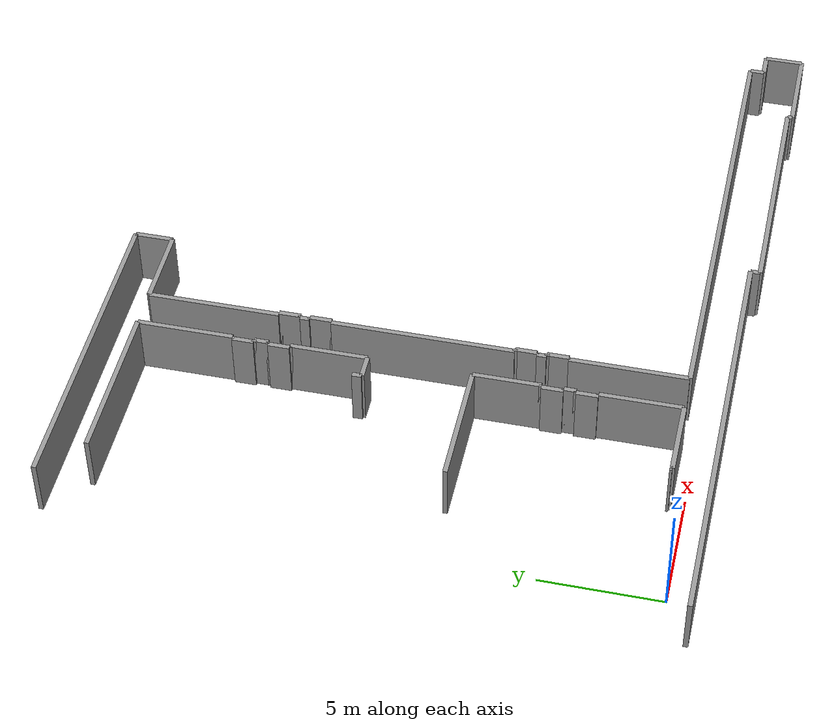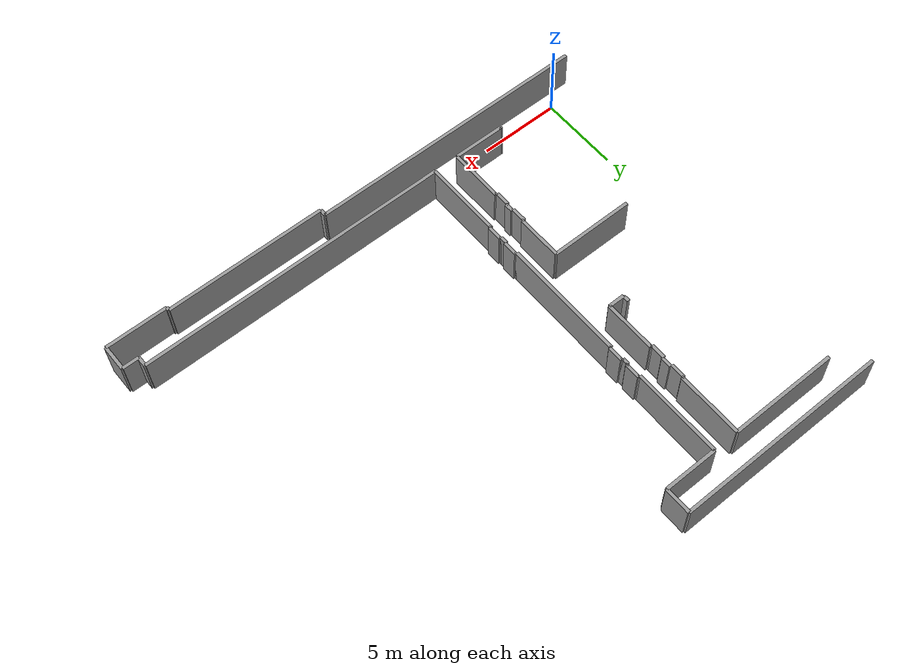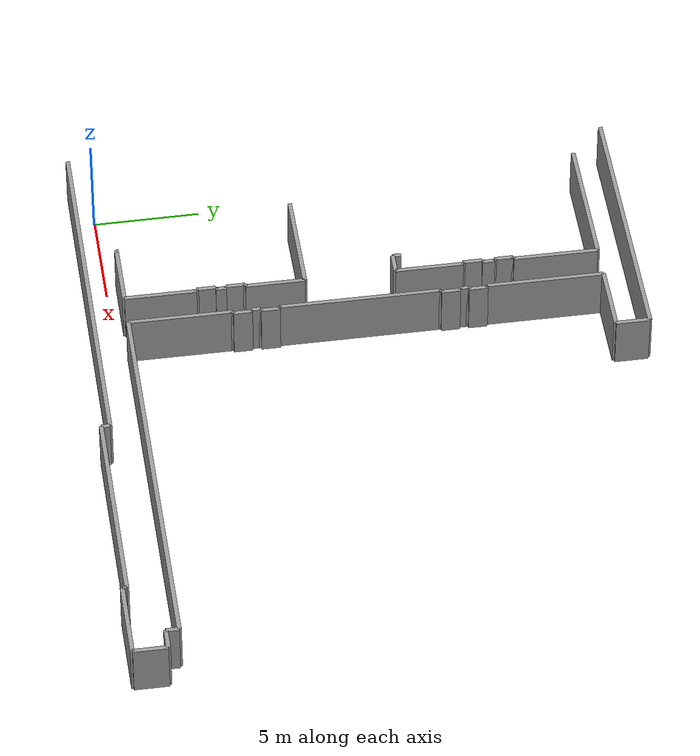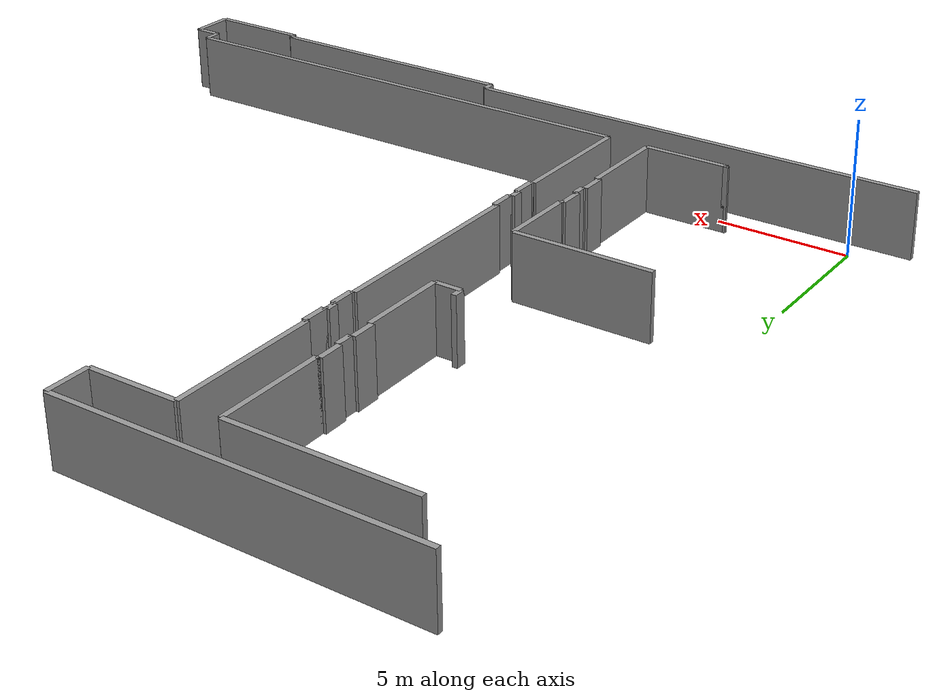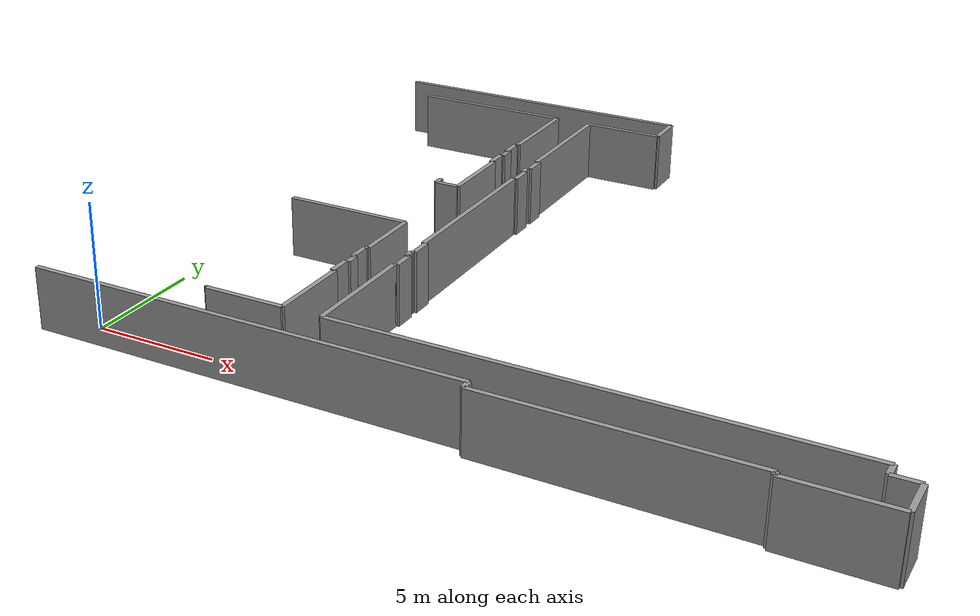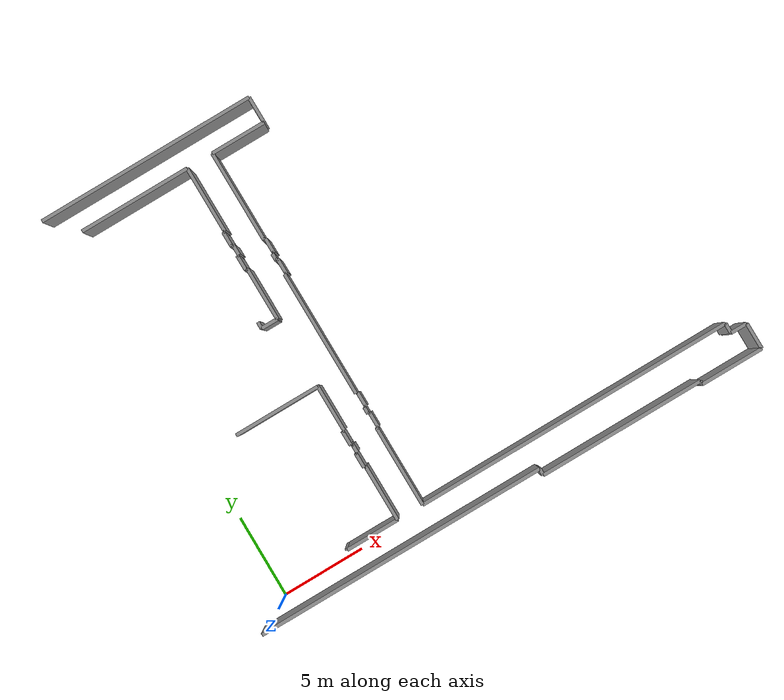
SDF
<sdf version="1.4">
 <model name="Levine">
  <link name="Floor_0">
   <collision name="Floor_0_Collision">
    <geometry><box><size>40 30 0.1</size></box></geometry>
    <pose>0 0 0.05 0 -0 0</pose>
   </collision>
   <velocity_decay><linear>0</linear><angular>0</angular></velocity_decay>
   <pose>15 10 1.7 0 -0 0</pose>
  </link>
  <link name="Wall_17">
   <collision name="Wall_17_Collision">
    <geometry><box><size>13.2 0.2 2.5</size></box></geometry>
    <pose>0 0 1.25 0 0 0</pose>
   </collision>
   <visual name="Wall_17_Visual">
    <pose>0 0 1.25 0 0 0</pose>
    <geometry><box><size>13.2 0.2 2.5</size></box></geometry>
    <material>
     <script><uri>file://media/materials/scripts/gazebo.material</uri><name>Gazebo/Grey</name></script>
    </material>
   </visual>
   <velocity_decay><linear>0</linear><angular>0</angular></velocity_decay>
   <pose>6.0 24.6 0 0 0 0.0</pose>
  </link>
  <link name="Wall_18">
   <collision name="Wall_18_Collision">
    <geometry><box><size>1.6 0.2 2.5</size></box></geometry>
    <pose>0 0 1.25 0 0 0</pose>
   </collision>
   <visual name="Wall_18_Visual">
    <pose>0 0 1.25 0 0 0</pose>
    <geometry><box><size>1.6 0.2 2.5</size></box></geometry>
    <material>
     <script><uri>file://media/materials/scripts/gazebo.material</uri><name>Gazebo/Grey</name></script>
    </material>
   </visual>
   <velocity_decay><linear>0</linear><angular>0</angular></velocity_decay>
   <pose>12.6 23.8 0 0 0 -1.57079632679</pose>
  </link>
  <link name="Wall_19">
   <collision name="Wall_19_Collision">
    <geometry><box><size>3.3 0.2 2.5</size></box></geometry>
    <pose>0 0 1.25 0 0 0</pose>
   </collision>
   <visual name="Wall_19_Visual">
    <pose>0 0 1.25 0 0 0</pose>
    <geometry><box><size>3.3 0.2 2.5</size></box></geometry>
    <material>
     <script><uri>file://media/materials/scripts/gazebo.material</uri><name>Gazebo/Grey</name></script>
    </material>
   </visual>
   <velocity_decay><linear>0</linear><angular>0</angular></velocity_decay>
   <pose>10.95 23.0 0 0 0 3.14159265359</pose>
  </link>
  <link name="Wall_20">
   <collision name="Wall_20_Collision">
    <geometry><box><size>4.9 0.2 2.5</size></box></geometry>
    <pose>0 0 1.25 0 0 0</pose>
   </collision>
   <visual name="Wall_20_Visual">
    <pose>0 0 1.25 0 0 0</pose>
    <geometry><box><size>4.9 0.2 2.5</size></box></geometry>
    <material>
     <script><uri>file://media/materials/scripts/gazebo.material</uri><name>Gazebo/Grey</name></script>
    </material>
   </visual>
   <velocity_decay><linear>0</linear><angular>0</angular></velocity_decay>
   <pose>9.3 3.05 0 0 0 1.57079632679</pose>
  </link>
  <link name="Wall_21">
   <collision name="Wall_21_Collision">
    <geometry><box><size>0.1 0.2 2.5</size></box></geometry>
    <pose>0 0 1.25 0 0 0</pose>
   </collision>
   <visual name="Wall_21_Visual">
    <pose>0 0 1.25 0 0 0</pose>
    <geometry><box><size>0.1 0.2 2.5</size></box></geometry>
    <material>
     <script><uri>file://media/materials/scripts/gazebo.material</uri><name>Gazebo/Grey</name></script>
    </material>
   </visual>
   <velocity_decay><linear>0</linear><angular>0</angular></velocity_decay>
   <pose>9.35 5.5 0 0 0 0.0</pose>
  </link>
  <link name="Wall_22">
   <collision name="Wall_22_Collision">
    <geometry><box><size>0.9 0.2 2.5</size></box></geometry>
    <pose>0 0 1.25 0 0 0</pose>
   </collision>
   <visual name="Wall_22_Visual">
    <pose>0 0 1.25 0 0 0</pose>
    <geometry><box><size>0.9 0.2 2.5</size></box></geometry>
    <material>
     <script><uri>file://media/materials/scripts/gazebo.material</uri><name>Gazebo/Grey</name></script>
    </material>
   </visual>
   <velocity_decay><linear>0</linear><angular>0</angular></velocity_decay>
   <pose>9.4 5.95 0 0 0 1.57079632679</pose>
  </link>
  <link name="Wall_23">
   <collision name="Wall_23_Collision">
    <geometry><box><size>0.1 0.2 2.5</size></box></geometry>
    <pose>0 0 1.25 0 0 0</pose>
   </collision>
   <visual name="Wall_23_Visual">
    <pose>0 0 1.25 0 0 0</pose>
    <geometry><box><size>0.1 0.2 2.5</size></box></geometry>
    <material>
     <script><uri>file://media/materials/scripts/gazebo.material</uri><name>Gazebo/Grey</name></script>
    </material>
   </visual>
   <velocity_decay><linear>0</linear><angular>0</angular></velocity_decay>
   <pose>9.35 6.4 0 0 0 3.14159265359</pose>
  </link>
  <link name="Wall_24">
   <collision name="Wall_24_Collision">
    <geometry><box><size>0.4 0.2 2.5</size></box></geometry>
    <pose>0 0 1.25 0 0 0</pose>
   </collision>
   <visual name="Wall_24_Visual">
    <pose>0 0 1.25 0 0 0</pose>
    <geometry><box><size>0.4 0.2 2.5</size></box></geometry>
    <material>
     <script><uri>file://media/materials/scripts/gazebo.material</uri><name>Gazebo/Grey</name></script>
    </material>
   </visual>
   <velocity_decay><linear>0</linear><angular>0</angular></velocity_decay>
   <pose>9.3 6.6 0 0 0 1.57079632679</pose>
  </link>
  <link name="Wall_25">
   <collision name="Wall_25_Collision">
    <geometry><box><size>0.1 0.2 2.5</size></box></geometry>
    <pose>0 0 1.25 0 0 0</pose>
   </collision>
   <visual name="Wall_25_Visual">
    <pose>0 0 1.25 0 0 0</pose>
    <geometry><box><size>0.1 0.2 2.5</size></box></geometry>
    <material>
     <script><uri>file://media/materials/scripts/gazebo.material</uri><name>Gazebo/Grey</name></script>
    </material>
   </visual>
   <velocity_decay><linear>0</linear><angular>0</angular></velocity_decay>
   <pose>9.35 6.8 0 0 0 0.0</pose>
  </link>
  <link name="Wall_26">
   <collision name="Wall_26_Collision">
    <geometry><box><size>0.9 0.2 2.5</size></box></geometry>
    <pose>0 0 1.25 0 0 0</pose>
   </collision>
   <visual name="Wall_26_Visual">
    <pose>0 0 1.25 0 0 0</pose>
    <geometry><box><size>0.9 0.2 2.5</size></box></geometry>
    <material>
     <script><uri>file://media/materials/scripts/gazebo.material</uri><name>Gazebo/Grey</name></script>
    </material>
   </visual>
   <velocity_decay><linear>0</linear><angular>0</angular></velocity_decay>
   <pose>9.4 7.25 0 0 0 1.57079632679</pose>
  </link>
  <link name="Wall_27">
   <collision name="Wall_27_Collision">
    <geometry><box><size>0.1 0.2 2.5</size></box></geometry>
    <pose>0 0 1.25 0 0 0</pose>
   </collision>
   <visual name="Wall_27_Visual">
    <pose>0 0 1.25 0 0 0</pose>
    <geometry><box><size>0.1 0.2 2.5</size></box></geometry>
    <material>
     <script><uri>file://media/materials/scripts/gazebo.material</uri><name>Gazebo/Grey</name></script>
    </material>
   </visual>
   <velocity_decay><linear>0</linear><angular>0</angular></velocity_decay>
   <pose>9.35 7.7 0 0 0 3.14159265359</pose>
  </link>
  <link name="Wall_28">
   <collision name="Wall_28_Collision">
    <geometry><box><size>7.6 0.2 2.5</size></box></geometry>
    <pose>0 0 1.25 0 0 0</pose>
   </collision>
   <visual name="Wall_28_Visual">
    <pose>0 0 1.25 0 0 0</pose>
    <geometry><box><size>7.6 0.2 2.5</size></box></geometry>
    <material>
     <script><uri>file://media/materials/scripts/gazebo.material</uri><name>Gazebo/Grey</name></script>
    </material>
   </visual>
   <velocity_decay><linear>0</linear><angular>0</angular></velocity_decay>
   <pose>9.3 11.5 0 0 0 1.57079632679</pose>
  </link>
  <link name="Wall_29">
   <collision name="Wall_29_Collision">
    <geometry><box><size>0.1 0.2 2.5</size></box></geometry>
    <pose>0 0 1.25 0 0 0</pose>
   </collision>
   <visual name="Wall_29_Visual">
    <pose>0 0 1.25 0 0 0</pose>
    <geometry><box><size>0.1 0.2 2.5</size></box></geometry>
    <material>
     <script><uri>file://media/materials/scripts/gazebo.material</uri><name>Gazebo/Grey</name></script>
    </material>
   </visual>
   <velocity_decay><linear>0</linear><angular>0</angular></velocity_decay>
   <pose>9.35 15.3 0 0 0 0.0</pose>
  </link>
  <link name="Wall_30">
   <collision name="Wall_30_Collision">
    <geometry><box><size>0.9 0.2 2.5</size></box></geometry>
    <pose>0 0 1.25 0 0 0</pose>
   </collision>
   <visual name="Wall_30_Visual">
    <pose>0 0 1.25 0 0 0</pose>
    <geometry><box><size>0.9 0.2 2.5</size></box></geometry>
    <material>
     <script><uri>file://media/materials/scripts/gazebo.material</uri><name>Gazebo/Grey</name></script>
    </material>
   </visual>
   <velocity_decay><linear>0</linear><angular>0</angular></velocity_decay>
   <pose>9.4 15.75 0 0 0 1.57079632679</pose>
  </link>
  <link name="Wall_31">
   <collision name="Wall_31_Collision">
    <geometry><box><size>0.1 0.2 2.5</size></box></geometry>
    <pose>0 0 1.25 0 0 0</pose>
   </collision>
   <visual name="Wall_31_Visual">
    <pose>0 0 1.25 0 0 0</pose>
    <geometry><box><size>0.1 0.2 2.5</size></box></geometry>
    <material>
     <script><uri>file://media/materials/scripts/gazebo.material</uri><name>Gazebo/Grey</name></script>
    </material>
   </visual>
   <velocity_decay><linear>0</linear><angular>0</angular></velocity_decay>
   <pose>9.35 16.2 0 0 0 3.14159265359</pose>
  </link>
  <link name="Wall_32">
   <collision name="Wall_32_Collision">
    <geometry><box><size>0.4 0.2 2.5</size></box></geometry>
    <pose>0 0 1.25 0 0 0</pose>
   </collision>
   <visual name="Wall_32_Visual">
    <pose>0 0 1.25 0 0 0</pose>
    <geometry><box><size>0.4 0.2 2.5</size></box></geometry>
    <material>
     <script><uri>file://media/materials/scripts/gazebo.material</uri><name>Gazebo/Grey</name></script>
    </material>
   </visual>
   <velocity_decay><linear>0</linear><angular>0</angular></velocity_decay>
   <pose>9.3 16.4 0 0 0 1.57079632679</pose>
  </link>
  <link name="Wall_33">
   <collision name="Wall_33_Collision">
    <geometry><box><size>0.1 0.2 2.5</size></box></geometry>
    <pose>0 0 1.25 0 0 0</pose>
   </collision>
   <visual name="Wall_33_Visual">
    <pose>0 0 1.25 0 0 0</pose>
    <geometry><box><size>0.1 0.2 2.5</size></box></geometry>
    <material>
     <script><uri>file://media/materials/scripts/gazebo.material</uri><name>Gazebo/Grey</name></script>
    </material>
   </visual>
   <velocity_decay><linear>0</linear><angular>0</angular></velocity_decay>
   <pose>9.35 16.6 0 0 0 0.0</pose>
  </link>
  <link name="Wall_34">
   <collision name="Wall_34_Collision">
    <geometry><box><size>0.9 0.2 2.5</size></box></geometry>
    <pose>0 0 1.25 0 0 0</pose>
   </collision>
   <visual name="Wall_34_Visual">
    <pose>0 0 1.25 0 0 0</pose>
    <geometry><box><size>0.9 0.2 2.5</size></box></geometry>
    <material>
     <script><uri>file://media/materials/scripts/gazebo.material</uri><name>Gazebo/Grey</name></script>
    </material>
   </visual>
   <velocity_decay><linear>0</linear><angular>0</angular></velocity_decay>
   <pose>9.4 17.05 0 0 0 1.57079632679</pose>
  </link>
  <link name="Wall_35">
   <collision name="Wall_35_Collision">
    <geometry><box><size>0.1 0.2 2.5</size></box></geometry>
    <pose>0 0 1.25 0 0 0</pose>
   </collision>
   <visual name="Wall_35_Visual">
    <pose>0 0 1.25 0 0 0</pose>
    <geometry><box><size>0.1 0.2 2.5</size></box></geometry>
    <material>
     <script><uri>file://media/materials/scripts/gazebo.material</uri><name>Gazebo/Grey</name></script>
    </material>
   </visual>
   <velocity_decay><linear>0</linear><angular>0</angular></velocity_decay>
   <pose>9.35 17.5 0 0 0 3.14159265359</pose>
  </link>
  <link name="Wall_36">
   <collision name="Wall_36_Collision">
    <geometry><box><size>5.5 0.2 2.5</size></box></geometry>
    <pose>0 0 1.25 0 0 0</pose>
   </collision>
   <visual name="Wall_36_Visual">
    <pose>0 0 1.25 0 0 0</pose>
    <geometry><box><size>5.5 0.2 2.5</size></box></geometry>
    <material>
     <script><uri>file://media/materials/scripts/gazebo.material</uri><name>Gazebo/Grey</name></script>
    </material>
   </visual>
   <velocity_decay><linear>0</linear><angular>0</angular></velocity_decay>
   <pose>9.3 20.25 0 0 0 1.57079632679</pose>
  </link>
  <link name="Wall_47">
   <collision name="Wall_47_Collision">
    <geometry><box><size>17.7 0.2 2.5</size></box></geometry>
    <pose>0 0 1.25 0 0 0</pose>
   </collision>
   <visual name="Wall_47_Visual">
    <pose>0 0 1.25 0 0 0</pose>
    <geometry><box><size>17.7 0.2 2.5</size></box></geometry>
    <material>
     <script><uri>file://media/materials/scripts/gazebo.material</uri><name>Gazebo/Grey</name></script>
    </material>
   </visual>
   <velocity_decay><linear>0</linear><angular>0</angular></velocity_decay>
   <pose>6.95 -1.0 0 0 0 0.0</pose>
  </link>
  <link name="Wall_48">
   <collision name="Wall_48_Collision">
    <geometry><box><size>0.4 0.2 2.5</size></box></geometry>
    <pose>0 0 1.25 0 0 0</pose>
   </collision>
   <visual name="Wall_48_Visual">
    <pose>0 0 1.25 0 0 0</pose>
    <geometry><box><size>0.4 0.2 2.5</size></box></geometry>
    <material>
     <script><uri>file://media/materials/scripts/gazebo.material</uri><name>Gazebo/Grey</name></script>
    </material>
   </visual>
   <velocity_decay><linear>0</linear><angular>0</angular></velocity_decay>
   <pose>15.8 -1.2 0 0 0 -1.57079632679</pose>
  </link>
  <link name="Wall_49">
   <collision name="Wall_49_Collision">
    <geometry><box><size>10.0 0.2 2.5</size></box></geometry>
    <pose>0 0 1.25 0 0 0</pose>
   </collision>
   <visual name="Wall_49_Visual">
    <pose>0 0 1.25 0 0 0</pose>
    <geometry><box><size>10.0 0.2 2.5</size></box></geometry>
    <material>
     <script><uri>file://media/materials/scripts/gazebo.material</uri><name>Gazebo/Grey</name></script>
    </material>
   </visual>
   <velocity_decay><linear>0</linear><angular>0</angular></velocity_decay>
   <pose>20.8 -1.4 0 0 0 0.0</pose>
  </link>
  <link name="Wall_50">
   <collision name="Wall_50_Collision">
    <geometry><box><size>0.2 0.2 2.5</size></box></geometry>
    <pose>0 0 1.25 0 0 0</pose>
   </collision>
   <visual name="Wall_50_Visual">
    <pose>0 0 1.25 0 0 0</pose>
    <geometry><box><size>0.2 0.2 2.5</size></box></geometry>
    <material>
     <script><uri>file://media/materials/scripts/gazebo.material</uri><name>Gazebo/Grey</name></script>
    </material>
   </visual>
   <velocity_decay><linear>0</linear><angular>0</angular></velocity_decay>
   <pose>25.8 -1.5 0 0 0 -1.57079632679</pose>
  </link>
  <link name="Wall_51">
   <collision name="Wall_51_Collision">
    <geometry><box><size>3.8 0.2 2.5</size></box></geometry>
    <pose>0 0 1.25 0 0 0</pose>
   </collision>
   <visual name="Wall_51_Visual">
    <pose>0 0 1.25 0 0 0</pose>
    <geometry><box><size>3.8 0.2 2.5</size></box></geometry>
    <material>
     <script><uri>file://media/materials/scripts/gazebo.material</uri><name>Gazebo/Grey</name></script>
    </material>
   </visual>
   <velocity_decay><linear>0</linear><angular>0</angular></velocity_decay>
   <pose>27.7 -1.6 0 0 0 0.0</pose>
  </link>
  <link name="Wall_52">
   <collision name="Wall_52_Collision">
    <geometry><box><size>1.6 0.2 2.5</size></box></geometry>
    <pose>0 0 1.25 0 0 0</pose>
   </collision>
   <visual name="Wall_52_Visual">
    <pose>0 0 1.25 0 0 0</pose>
    <geometry><box><size>1.6 0.2 2.5</size></box></geometry>
    <material>
     <script><uri>file://media/materials/scripts/gazebo.material</uri><name>Gazebo/Grey</name></script>
    </material>
   </visual>
   <velocity_decay><linear>0</linear><angular>0</angular></velocity_decay>
   <pose>29.6 -0.8 0 0 0 1.57079632679</pose>
  </link>
  <link name="Wall_53">
   <collision name="Wall_53_Collision">
    <geometry><box><size>1.0 0.2 2.5</size></box></geometry>
    <pose>0 0 1.25 0 0 0</pose>
   </collision>
   <visual name="Wall_53_Visual">
    <pose>0 0 1.25 0 0 0</pose>
    <geometry><box><size>1.0 0.2 2.5</size></box></geometry>
    <material>
     <script><uri>file://media/materials/scripts/gazebo.material</uri><name>Gazebo/Grey</name></script>
    </material>
   </visual>
   <velocity_decay><linear>0</linear><angular>0</angular></velocity_decay>
   <pose>29.1 0.0 0 0 0 3.14159265359</pose>
  </link>
  <link name="Wall_54">
   <collision name="Wall_54_Collision">
    <geometry><box><size>0.6 0.2 2.5</size></box></geometry>
    <pose>0 0 1.25 0 0 0</pose>
   </collision>
   <visual name="Wall_54_Visual">
    <pose>0 0 1.25 0 0 0</pose>
    <geometry><box><size>0.6 0.2 2.5</size></box></geometry>
    <material>
     <script><uri>file://media/materials/scripts/gazebo.material</uri><name>Gazebo/Grey</name></script>
    </material>
   </visual>
   <velocity_decay><linear>0</linear><angular>0</angular></velocity_decay>
   <pose>28.6 0.3 0 0 0 1.57079632679</pose>
  </link>
  <link name="Wall_55">
   <collision name="Wall_55_Collision">
    <geometry><box><size>19.3 0.2 2.5</size></box></geometry>
    <pose>0 0 1.25 0 0 0</pose>
   </collision>
   <visual name="Wall_55_Visual">
    <pose>0 0 1.25 0 0 0</pose>
    <geometry><box><size>19.3 0.2 2.5</size></box></geometry>
    <material>
     <script><uri>file://media/materials/scripts/gazebo.material</uri><name>Gazebo/Grey</name></script>
    </material>
   </visual>
   <velocity_decay><linear>0</linear><angular>0</angular></velocity_decay>
   <pose>18.95 0.6 0 0 0 3.14159265359</pose>
  </link>
  <link name="Wall_69">
   <collision name="Wall_69_Collision">
    <geometry><box><size>5.2 0.2 2.5</size></box></geometry>
    <pose>0 0 1.25 0 0 0</pose>
   </collision>
   <visual name="Wall_69_Visual">
    <pose>0 0 1.25 0 0 0</pose>
    <geometry><box><size>5.2 0.2 2.5</size></box></geometry>
    <material>
     <script><uri>file://media/materials/scripts/gazebo.material</uri><name>Gazebo/Grey</name></script>
    </material>
   </visual>
   <velocity_decay><linear>0</linear><angular>0</angular></velocity_decay>
   <pose>5.1 9.1 0 0 0 0.0</pose>
  </link>
  <link name="Wall_70">
   <collision name="Wall_70_Collision">
    <geometry><box><size>2.8 0.2 2.5</size></box></geometry>
    <pose>0 0 1.25 0 0 0</pose>
   </collision>
   <visual name="Wall_70_Visual">
    <pose>0 0 1.25 0 0 0</pose>
    <geometry><box><size>2.8 0.2 2.5</size></box></geometry>
    <material>
     <script><uri>file://media/materials/scripts/gazebo.material</uri><name>Gazebo/Grey</name></script>
    </material>
   </visual>
   <velocity_decay><linear>0</linear><angular>0</angular></velocity_decay>
   <pose>7.7 7.7 0 0 0 -1.57079632679</pose>
  </link>
  <link name="Wall_71">
   <collision name="Wall_71_Collision">
    <geometry><box><size>0.1 0.2 2.5</size></box></geometry>
    <pose>0 0 1.25 0 0 0</pose>
   </collision>
   <visual name="Wall_71_Visual">
    <pose>0 0 1.25 0 0 0</pose>
    <geometry><box><size>0.1 0.2 2.5</size></box></geometry>
    <material>
     <script><uri>file://media/materials/scripts/gazebo.material</uri><name>Gazebo/Grey</name></script>
    </material>
   </visual>
   <velocity_decay><linear>0</linear><angular>0</angular></velocity_decay>
   <pose>7.65 6.3 0 0 0 3.14159265359</pose>
  </link>
  <link name="Wall_72">
   <collision name="Wall_72_Collision">
    <geometry><box><size>0.9 0.2 2.5</size></box></geometry>
    <pose>0 0 1.25 0 0 0</pose>
   </collision>
   <visual name="Wall_72_Visual">
    <pose>0 0 1.25 0 0 0</pose>
    <geometry><box><size>0.9 0.2 2.5</size></box></geometry>
    <material>
     <script><uri>file://media/materials/scripts/gazebo.material</uri><name>Gazebo/Grey</name></script>
    </material>
   </visual>
   <velocity_decay><linear>0</linear><angular>0</angular></velocity_decay>
   <pose>7.6 5.85 0 0 0 -1.57079632679</pose>
  </link>
  <link name="Wall_73">
   <collision name="Wall_73_Collision">
    <geometry><box><size>0.1 0.2 2.5</size></box></geometry>
    <pose>0 0 1.25 0 0 0</pose>
   </collision>
   <visual name="Wall_73_Visual">
    <pose>0 0 1.25 0 0 0</pose>
    <geometry><box><size>0.1 0.2 2.5</size></box></geometry>
    <material>
     <script><uri>file://media/materials/scripts/gazebo.material</uri><name>Gazebo/Grey</name></script>
    </material>
   </visual>
   <velocity_decay><linear>0</linear><angular>0</angular></velocity_decay>
   <pose>7.65 5.4 0 0 0 0.0</pose>
  </link>
  <link name="Wall_74">
   <collision name="Wall_74_Collision">
    <geometry><box><size>0.5 0.2 2.5</size></box></geometry>
    <pose>0 0 1.25 0 0 0</pose>
   </collision>
   <visual name="Wall_74_Visual">
    <pose>0 0 1.25 0 0 0</pose>
    <geometry><box><size>0.5 0.2 2.5</size></box></geometry>
    <material>
     <script><uri>file://media/materials/scripts/gazebo.material</uri><name>Gazebo/Grey</name></script>
    </material>
   </visual>
   <velocity_decay><linear>0</linear><angular>0</angular></velocity_decay>
   <pose>7.7 5.15 0 0 0 -1.57079632679</pose>
  </link>
  <link name="Wall_75">
   <collision name="Wall_75_Collision">
    <geometry><box><size>0.1 0.2 2.5</size></box></geometry>
    <pose>0 0 1.25 0 0 0</pose>
   </collision>
   <visual name="Wall_75_Visual">
    <pose>0 0 1.25 0 0 0</pose>
    <geometry><box><size>0.1 0.2 2.5</size></box></geometry>
    <material>
     <script><uri>file://media/materials/scripts/gazebo.material</uri><name>Gazebo/Grey</name></script>
    </material>
   </visual>
   <velocity_decay><linear>0</linear><angular>0</angular></velocity_decay>
   <pose>7.65 4.9 0 0 0 3.14159265359</pose>
  </link>
  <link name="Wall_76">
   <collision name="Wall_76_Collision">
    <geometry><box><size>0.9 0.2 2.5</size></box></geometry>
    <pose>0 0 1.25 0 0 0</pose>
   </collision>
   <visual name="Wall_76_Visual">
    <pose>0 0 1.25 0 0 0</pose>
    <geometry><box><size>0.9 0.2 2.5</size></box></geometry>
    <material>
     <script><uri>file://media/materials/scripts/gazebo.material</uri><name>Gazebo/Grey</name></script>
    </material>
   </visual>
   <velocity_decay><linear>0</linear><angular>0</angular></velocity_decay>
   <pose>7.6 4.45 0 0 0 -1.57079632679</pose>
  </link>
  <link name="Wall_77">
   <collision name="Wall_77_Collision">
    <geometry><box><size>0.1 0.2 2.5</size></box></geometry>
    <pose>0 0 1.25 0 0 0</pose>
   </collision>
   <visual name="Wall_77_Visual">
    <pose>0 0 1.25 0 0 0</pose>
    <geometry><box><size>0.1 0.2 2.5</size></box></geometry>
    <material>
     <script><uri>file://media/materials/scripts/gazebo.material</uri><name>Gazebo/Grey</name></script>
    </material>
   </visual>
   <velocity_decay><linear>0</linear><angular>0</angular></velocity_decay>
   <pose>7.65 4.0 0 0 0 0.0</pose>
  </link>
  <link name="Wall_78">
   <collision name="Wall_78_Collision">
    <geometry><box><size>3.4 0.2 2.5</size></box></geometry>
    <pose>0 0 1.25 0 0 0</pose>
   </collision>
   <visual name="Wall_78_Visual">
    <pose>0 0 1.25 0 0 0</pose>
    <geometry><box><size>3.4 0.2 2.5</size></box></geometry>
    <material>
     <script><uri>file://media/materials/scripts/gazebo.material</uri><name>Gazebo/Grey</name></script>
    </material>
   </visual>
   <velocity_decay><linear>0</linear><angular>0</angular></velocity_decay>
   <pose>7.7 2.3 0 0 0 -1.57079632679</pose>
  </link>
  <link name="Wall_79">
   <collision name="Wall_79_Collision">
    <geometry><box><size>3.2 0.2 2.5</size></box></geometry>
    <pose>0 0 1.25 0 0 0</pose>
   </collision>
   <visual name="Wall_79_Visual">
    <pose>0 0 1.25 0 0 0</pose>
    <geometry><box><size>3.2 0.2 2.5</size></box></geometry>
    <material>
     <script><uri>file://media/materials/scripts/gazebo.material</uri><name>Gazebo/Grey</name></script>
    </material>
   </visual>
   <velocity_decay><linear>0</linear><angular>0</angular></velocity_decay>
   <pose>6.1 0.6 0 0 0 3.14159265359</pose>
  </link>
  <link name="Wall_80">
   <collision name="Wall_80_Collision">
    <geometry><box><size>0.1 0.2 2.5</size></box></geometry>
    <pose>0 0 1.25 0 0 0</pose>
   </collision>
   <visual name="Wall_80_Visual">
    <pose>0 0 1.25 0 0 0</pose>
    <geometry><box><size>0.1 0.2 2.5</size></box></geometry>
    <material>
     <script><uri>file://media/materials/scripts/gazebo.material</uri><name>Gazebo/Grey</name></script>
    </material>
   </visual>
   <velocity_decay><linear>0</linear><angular>0</angular></velocity_decay>
   <pose>4.5 0.65 0 0 0 1.57079632679</pose>
  </link>
  <link name="Wall_93">
   <collision name="Wall_93_Collision">
    <geometry><box><size>6.7 0.2 2.5</size></box></geometry>
    <pose>0 0 1.25 0 0 0</pose>
   </collision>
   <visual name="Wall_93_Visual">
    <pose>0 0 1.25 0 0 0</pose>
    <geometry><box><size>6.7 0.2 2.5</size></box></geometry>
    <material>
     <script><uri>file://media/materials/scripts/gazebo.material</uri><name>Gazebo/Grey</name></script>
    </material>
   </visual>
   <velocity_decay><linear>0</linear><angular>0</angular></velocity_decay>
   <pose>4.35 23.0 0 0 0 0.0</pose>
  </link>
  <link name="Wall_94">
   <collision name="Wall_94_Collision">
    <geometry><box><size>4.0 0.2 2.5</size></box></geometry>
    <pose>0 0 1.25 0 0 0</pose>
   </collision>
   <visual name="Wall_94_Visual">
    <pose>0 0 1.25 0 0 0</pose>
    <geometry><box><size>4.0 0.2 2.5</size></box></geometry>
    <material>
     <script><uri>file://media/materials/scripts/gazebo.material</uri><name>Gazebo/Grey</name></script>
    </material>
   </visual>
   <velocity_decay><linear>0</linear><angular>0</angular></velocity_decay>
   <pose>7.7 21.0 0 0 0 -1.57079632679</pose>
  </link>
  <link name="Wall_95">
   <collision name="Wall_95_Collision">
    <geometry><box><size>0.1 0.2 2.5</size></box></geometry>
    <pose>0 0 1.25 0 0 0</pose>
   </collision>
   <visual name="Wall_95_Visual">
    <pose>0 0 1.25 0 0 0</pose>
    <geometry><box><size>0.1 0.2 2.5</size></box></geometry>
    <material>
     <script><uri>file://media/materials/scripts/gazebo.material</uri><name>Gazebo/Grey</name></script>
    </material>
   </visual>
   <velocity_decay><linear>0</linear><angular>0</angular></velocity_decay>
   <pose>7.65 19.0 0 0 0 3.14159265359</pose>
  </link>
  <link name="Wall_96">
   <collision name="Wall_96_Collision">
    <geometry><box><size>0.9 0.2 2.5</size></box></geometry>
    <pose>0 0 1.25 0 0 0</pose>
   </collision>
   <visual name="Wall_96_Visual">
    <pose>0 0 1.25 0 0 0</pose>
    <geometry><box><size>0.9 0.2 2.5</size></box></geometry>
    <material>
     <script><uri>file://media/materials/scripts/gazebo.material</uri><name>Gazebo/Grey</name></script>
    </material>
   </visual>
   <velocity_decay><linear>0</linear><angular>0</angular></velocity_decay>
   <pose>7.6 18.55 0 0 0 -1.57079632679</pose>
  </link>
  <link name="Wall_97">
   <collision name="Wall_97_Collision">
    <geometry><box><size>0.1 0.2 2.5</size></box></geometry>
    <pose>0 0 1.25 0 0 0</pose>
   </collision>
   <visual name="Wall_97_Visual">
    <pose>0 0 1.25 0 0 0</pose>
    <geometry><box><size>0.1 0.2 2.5</size></box></geometry>
    <material>
     <script><uri>file://media/materials/scripts/gazebo.material</uri><name>Gazebo/Grey</name></script>
    </material>
   </visual>
   <velocity_decay><linear>0</linear><angular>0</angular></velocity_decay>
   <pose>7.65 18.1 0 0 0 0.0</pose>
  </link>
  <link name="Wall_98">
   <collision name="Wall_98_Collision">
    <geometry><box><size>0.6 0.2 2.5</size></box></geometry>
    <pose>0 0 1.25 0 0 0</pose>
   </collision>
   <visual name="Wall_98_Visual">
    <pose>0 0 1.25 0 0 0</pose>
    <geometry><box><size>0.6 0.2 2.5</size></box></geometry>
    <material>
     <script><uri>file://media/materials/scripts/gazebo.material</uri><name>Gazebo/Grey</name></script>
    </material>
   </visual>
   <velocity_decay><linear>0</linear><angular>0</angular></velocity_decay>
   <pose>7.7 17.8 0 0 0 -1.57079632679</pose>
  </link>
  <link name="Wall_99">
   <collision name="Wall_99_Collision">
    <geometry><box><size>0.1 0.2 2.5</size></box></geometry>
    <pose>0 0 1.25 0 0 0</pose>
   </collision>
   <visual name="Wall_99_Visual">
    <pose>0 0 1.25 0 0 0</pose>
    <geometry><box><size>0.1 0.2 2.5</size></box></geometry>
    <material>
     <script><uri>file://media/materials/scripts/gazebo.material</uri><name>Gazebo/Grey</name></script>
    </material>
   </visual>
   <velocity_decay><linear>0</linear><angular>0</angular></velocity_decay>
   <pose>7.65 17.5 0 0 0 3.14159265359</pose>
  </link>
  <link name="Wall_100">
   <collision name="Wall_100_Collision">
    <geometry><box><size>0.9 0.2 2.5</size></box></geometry>
    <pose>0 0 1.25 0 0 0</pose>
   </collision>
   <visual name="Wall_100_Visual">
    <pose>0 0 1.25 0 0 0</pose>
    <geometry><box><size>0.9 0.2 2.5</size></box></geometry>
    <material>
     <script><uri>file://media/materials/scripts/gazebo.material</uri><name>Gazebo/Grey</name></script>
    </material>
   </visual>
   <velocity_decay><linear>0</linear><angular>0</angular></velocity_decay>
   <pose>7.6 17.05 0 0 0 -1.57079632679</pose>
  </link>
  <link name="Wall_101">
   <collision name="Wall_101_Collision">
    <geometry><box><size>0.1 0.2 2.5</size></box></geometry>
    <pose>0 0 1.25 0 0 0</pose>
   </collision>
   <visual name="Wall_101_Visual">
    <pose>0 0 1.25 0 0 0</pose>
    <geometry><box><size>0.1 0.2 2.5</size></box></geometry>
    <material>
     <script><uri>file://media/materials/scripts/gazebo.material</uri><name>Gazebo/Grey</name></script>
    </material>
   </visual>
   <velocity_decay><linear>0</linear><angular>0</angular></velocity_decay>
   <pose>7.65 16.6 0 0 0 0.0</pose>
  </link>
  <link name="Wall_102">
   <collision name="Wall_102_Collision">
    <geometry><box><size>3.2 0.2 2.5</size></box></geometry>
    <pose>0 0 1.25 0 0 0</pose>
   </collision>
   <visual name="Wall_102_Visual">
    <pose>0 0 1.25 0 0 0</pose>
    <geometry><box><size>3.2 0.2 2.5</size></box></geometry>
    <material>
     <script><uri>file://media/materials/scripts/gazebo.material</uri><name>Gazebo/Grey</name></script>
    </material>
   </visual>
   <velocity_decay><linear>0</linear><angular>0</angular></velocity_decay>
   <pose>7.7 15.0 0 0 0 -1.57079632679</pose>
  </link>
  <link name="Wall_103">
   <collision name="Wall_103_Collision">
    <geometry><box><size>1.0 0.2 2.5</size></box></geometry>
    <pose>0 0 1.25 0 0 0</pose>
   </collision>
   <visual name="Wall_103_Visual">
    <pose>0 0 1.25 0 0 0</pose>
    <geometry><box><size>1.0 0.2 2.5</size></box></geometry>
    <material>
     <script><uri>file://media/materials/scripts/gazebo.material</uri><name>Gazebo/Grey</name></script>
    </material>
   </visual>
   <velocity_decay><linear>0</linear><angular>0</angular></velocity_decay>
   <pose>7.2 13.4 0 0 0 3.14159265359</pose>
  </link>
  <link name="Wall_104">
   <collision name="Wall_104_Collision">
    <geometry><box><size>0.4 0.2 2.5</size></box></geometry>
    <pose>0 0 1.25 0 0 0</pose>
   </collision>
   <visual name="Wall_104_Visual">
    <pose>0 0 1.25 0 0 0</pose>
    <geometry><box><size>0.4 0.2 2.5</size></box></geometry>
    <material>
     <script><uri>file://media/materials/scripts/gazebo.material</uri><name>Gazebo/Grey</name></script>
    </material>
   </visual>
   <velocity_decay><linear>0</linear><angular>0</angular></velocity_decay>
   <pose>6.7 13.6 0 0 0 1.57079632679</pose>
  </link>
  <static>1</static>
 </model>
</sdf>
